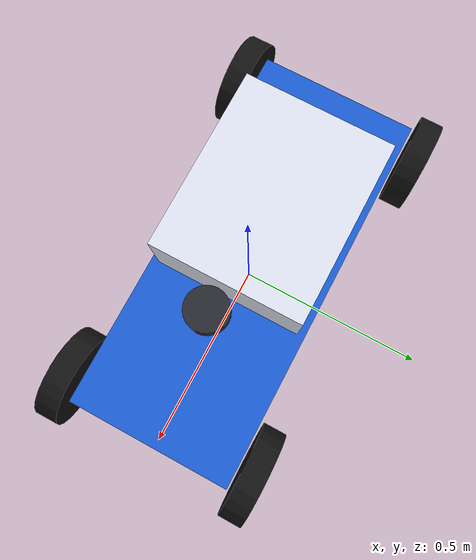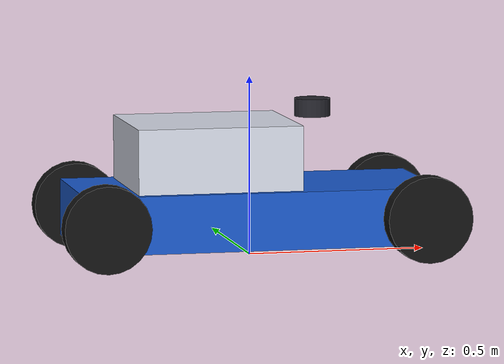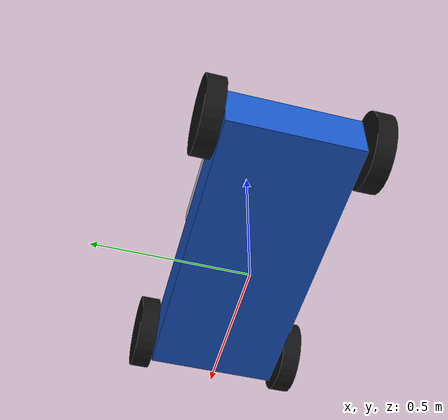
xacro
<?xml version="1.0"?>
<robot xmlns:xacro="http://www.ros.org/wiki/xacro" name="ackermann_car">

  <!-- ============ Dimensions (smaller, better scaled to the arena) ============ -->
  <xacro:property name="wheelbase"    value="0.9"/>    <!-- front-rear axle distance, m -->
  <xacro:property name="track"        value="0.5"/>    <!-- left-right wheel distance, m -->
  <xacro:property name="wheel_radius" value="0.12"/>
  <xacro:property name="wheel_width"  value="0.06"/>
  <xacro:property name="body_length"  value="1.0"/>
  <xacro:property name="body_width"   value="0.42"/>
  <xacro:property name="body_height"  value="0.16"/>
  <xacro:property name="cabin_length" value="0.46"/>
  <xacro:property name="cabin_width"  value="0.38"/>
  <xacro:property name="cabin_height" value="0.18"/>
  <xacro:property name="mass"         value="8.0"/>
  <xacro:property name="steer_limit"  value="0.6109"/> <!-- 35 deg -->

  <!-- ============ Colours ============ -->
  <material name="chassis_blue"><color rgba="0.10 0.35 0.80 1"/></material>
  <material name="cabin_silver"><color rgba="0.85 0.87 0.92 1"/></material>
  <material name="wheel_black"><color rgba="0.07 0.07 0.07 1"/></material>
  <material name="lidar_dark"><color rgba="0.15 0.15 0.18 1"/></material>
  <material name="accent_red"><color rgba="0.85 0.15 0.12 1"/></material>

  <!-- ============ Base / chassis ============ -->
  <link name="base_link">
    <inertial>
      <origin xyz="0 0 ${wheel_radius}" rpy="0 0 0"/>
      <mass value="${mass}"/>
      <inertia ixx="${mass/12*(body_width*body_width+body_height*body_height)}"
               iyy="${mass/12*(body_length*body_length+body_height*body_height)}"
               izz="${mass/12*(body_length*body_length+body_width*body_width)}"
               ixy="0" ixz="0" iyz="0"/>
    </inertial>
    <!-- chassis slab -->
    <visual>
      <origin xyz="0 0 ${wheel_radius}" rpy="0 0 0"/>
      <geometry><box size="${body_length} ${body_width} ${body_height}"/></geometry>
      <material name="chassis_blue"/>
    </visual>
    <!-- cabin (toward the rear) -->
    <visual>
      <origin xyz="${-0.12} 0 ${wheel_radius+body_height/2+cabin_height/2}" rpy="0 0 0"/>
      <geometry><box size="${cabin_length} ${cabin_width} ${cabin_height}"/></geometry>
      <material name="cabin_silver"/>
    </visual>
    <!-- front bumper accent -->
    <visual>
      <origin xyz="${body_length/2-0.03} 0 ${wheel_radius}" rpy="0 0 0"/>
      <geometry><box size="0.06 ${body_width*0.9} ${body_height*0.7}"/></geometry>
      <material name="accent_red"/>
    </visual>
    <collision>
      <origin xyz="0 0 ${wheel_radius}" rpy="0 0 0"/>
      <geometry><box size="${body_length} ${body_width} ${body_height}"/></geometry>
    </collision>
  </link>

  <!-- ============ ros2_control hardware interface ============ -->
  <ros2_control name="GazeboSystem" type="system">
    <hardware>
      <plugin>gazebo_ros2_control/GazeboSystem</plugin>
    </hardware>
    <joint name="front_left_steering_joint">
      <command_interface name="position"/>
      <state_interface name="position"/>
      <state_interface name="velocity"/>
    </joint>
    <joint name="front_right_steering_joint">
      <command_interface name="position"/>
      <state_interface name="position"/>
      <state_interface name="velocity"/>
    </joint>
    <joint name="rear_left_wheel_joint">
      <command_interface name="velocity"/>
      <state_interface name="position"/>
      <state_interface name="velocity"/>
    </joint>
    <joint name="rear_right_wheel_joint">
      <command_interface name="velocity"/>
      <state_interface name="position"/>
      <state_interface name="velocity"/>
    </joint>
    <joint name="front_left_wheel_joint">
      <state_interface name="position"/>
      <state_interface name="velocity"/>
    </joint>
    <joint name="front_right_wheel_joint">
      <state_interface name="position"/>
      <state_interface name="velocity"/>
    </joint>
  </ros2_control>

  <gazebo>
    <plugin name="gazebo_ros2_control" filename="libgazebo_ros2_control.so">
      <parameters>$(find planner_gazebo_demo)/config/ackermann_control.yaml</parameters>
    </plugin>
  </gazebo>

  <!-- ============ Sensors ============ -->
  <link name="lidar_link">
    <inertial>
      <mass value="0.1"/>
      <origin xyz="0 0 0" rpy="0 0 0"/>
      <inertia ixx="0.0001" iyy="0.0001" izz="0.0001" ixy="0" ixz="0" iyz="0"/>
    </inertial>
    <visual>
      <geometry><cylinder radius="0.05" length="0.05"/></geometry>
      <material name="lidar_dark"/>
    </visual>
  </link>
  <joint name="lidar_joint" type="fixed">
    <parent link="base_link"/>
    <child link="lidar_link"/>
    <origin xyz="${0.18} 0 ${wheel_radius+body_height/2+cabin_height+0.03}" rpy="0 0 0"/>
  </joint>

  <gazebo reference="lidar_link">
    <sensor name="lidar_sensor" type="gpu_ray">
      <pose>0 0 0 0 0 0</pose>
      <visualize>true</visualize>
      <update_rate>10</update_rate>
      <ray>
        <scan><horizontal>
          <samples>720</samples><resolution>1</resolution>
          <min_angle>-3.14159</min_angle><max_angle>3.14159</max_angle>
        </horizontal></scan>
        <range><min>0.2</min><max>30.0</max><resolution>0.02</resolution></range>
        <noise><type>gaussian</type><mean>0.0</mean><stddev>0.01</stddev></noise>
      </ray>
      <plugin name="lidar_controller" filename="libgazebo_ros_ray_sensor.so">
        <ros><remapping>~/out:=/scan</remapping></ros>
        <output_type>sensor_msgs/LaserScan</output_type>
        <frame_name>lidar_link</frame_name>
      </plugin>
    </sensor>
  </gazebo>

  <gazebo reference="base_link">
    <sensor name="imu_sensor" type="imu">
      <always_on>true</always_on>
      <update_rate>50</update_rate>
      <imu>
        <angular_velocity>
          <x><noise type="none"/><mean>0.0</mean><stddev>0.0</stddev><bias_mean>0.0</bias_mean><bias_stddev>0.0</bias_stddev></x>
          <y><noise type="none"/><mean>0.0</mean><stddev>0.0</stddev><bias_mean>0.0</bias_mean><bias_stddev>0.0</bias_stddev></y>
          <z><noise type="none"/><mean>0.0</mean><stddev>0.0</stddev><bias_mean>0.0</bias_mean><bias_stddev>0.0</bias_stddev></z>
        </angular_velocity>
        <linear_acceleration>
          <x><noise type="none"/><mean>0.0</mean><stddev>0.0</stddev><bias_mean>0.0</bias_mean><bias_stddev>0.0</bias_stddev></x>
          <y><noise type="none"/><mean>0.0</mean><stddev>0.0</stddev><bias_mean>0.0</bias_mean><bias_stddev>0.0</bias_stddev></y>
          <z><noise type="none"/><mean>0.0</mean><stddev>0.0</stddev><bias_mean>0.0</bias_mean><bias_stddev>0.0</bias_stddev></z>
        </linear_acceleration>
      </imu>
      <plugin name="imu_plugin" filename="libgazebo_ros_imu_sensor.so">
        <ros><remapping>~/out:=/imu</remapping></ros>
        <frame_name>base_link</frame_name>
        <initial_orientation_as_reference>false</initial_orientation_as_reference>
      </plugin>
    </sensor>
  </gazebo>

  <!-- ============ Wheels ============ -->
  <!-- Steered (front) wheel: steering_link (revolute about z) -> wheel (spins about y) -->
  <xacro:macro name="steer_wheel" params="name x y">
    <joint name="${name}_steering_joint" type="revolute">
      <parent link="base_link"/>
      <child link="${name}_steering_link"/>
      <origin xyz="${x} ${y} ${wheel_radius}" rpy="0 0 0"/>
      <axis xyz="0 0 1"/>
      <limit lower="${-steer_limit}" upper="${steer_limit}" effort="40" velocity="8"/>
    </joint>
    <link name="${name}_steering_link">
      <inertial><mass value="0.3"/><origin xyz="0 0 0"/>
        <inertia ixx="0.0008" iyy="0.0008" izz="0.0008" ixy="0" ixz="0" iyz="0"/></inertial>
    </link>
    <joint name="${name}_wheel_joint" type="continuous">
      <parent link="${name}_steering_link"/>
      <child link="${name}_wheel_link"/>
      <origin xyz="0 0 0" rpy="${pi/2} 0 0"/>
      <axis xyz="0 0 1"/>
    </joint>
    <link name="${name}_wheel_link">
      <inertial><mass value="0.5"/><origin xyz="0 0 0"/>
        <inertia ixx="0.0015" iyy="0.0015" izz="0.0015" ixy="0" ixz="0" iyz="0"/></inertial>
      <visual><geometry><cylinder radius="${wheel_radius}" length="${wheel_width}"/></geometry>
        <material name="wheel_black"/></visual>
      <collision><geometry><cylinder radius="${wheel_radius}" length="${wheel_width}"/></geometry></collision>
    </link>
  </xacro:macro>

  <!-- Fixed (rear) wheel: spins about y, no steering -->
  <xacro:macro name="rear_wheel" params="name x y">
    <joint name="${name}_wheel_joint" type="continuous">
      <parent link="base_link"/>
      <child link="${name}_wheel_link"/>
      <origin xyz="${x} ${y} ${wheel_radius}" rpy="${pi/2} 0 0"/>
      <axis xyz="0 0 1"/>
    </joint>
    <link name="${name}_wheel_link">
      <inertial><mass value="0.5"/><origin xyz="0 0 0"/>
        <inertia ixx="0.0015" iyy="0.0015" izz="0.0015" ixy="0" ixz="0" iyz="0"/></inertial>
      <visual><geometry><cylinder radius="${wheel_radius}" length="${wheel_width}"/></geometry>
        <material name="wheel_black"/></visual>
      <collision><geometry><cylinder radius="${wheel_radius}" length="${wheel_width}"/></geometry></collision>
    </link>
  </xacro:macro>

  <xacro:steer_wheel name="front_left"  x="${ wheelbase/2}" y="${ track/2}"/>
  <xacro:steer_wheel name="front_right" x="${ wheelbase/2}" y="${-track/2}"/>
  <xacro:rear_wheel  name="rear_left"   x="${-wheelbase/2}" y="${ track/2}"/>
  <xacro:rear_wheel  name="rear_right"  x="${-wheelbase/2}" y="${-track/2}"/>

  <gazebo reference="base_link">
    <material>Gazebo/Blue</material>
  </gazebo>

  <gazebo reference="front_left_wheel_link">
    <material>Gazebo/Black</material>
    <mu1>2.0</mu1>      <mu2>2.0</mu2>      <kp>10000000.0</kp> <kd>1.0</kd>        </gazebo>

  <gazebo reference="front_right_wheel_link">
    <material>Gazebo/Black</material>
    <mu1>2.0</mu1>
    <mu2>2.0</mu2>
    <kp>10000000.0</kp>
    <kd>1.0</kd>
  </gazebo>

  <gazebo reference="rear_left_wheel_link">
    <material>Gazebo/Black</material>
    <mu1>2.0</mu1>
    <mu2>2.0</mu2>
    <kp>10000000.0</kp>
    <kd>1.0</kd>
  </gazebo>

  <gazebo reference="rear_right_wheel_link">
    <material>Gazebo/Black</material>
    <mu1>2.0</mu1>
    <mu2>2.0</mu2>
    <kp>10000000.0</kp>
    <kd>1.0</kd>
  </gazebo>
</robot>
